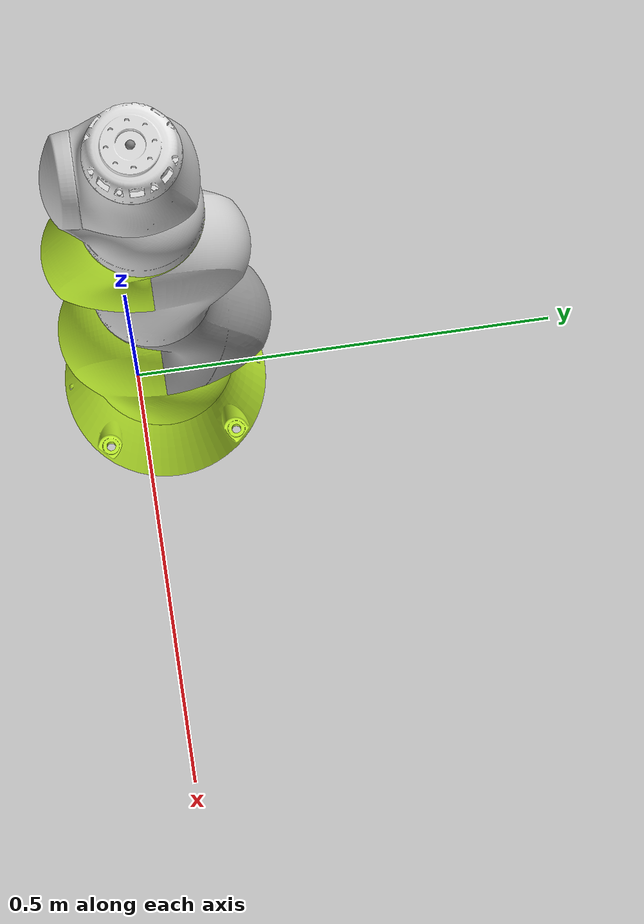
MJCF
<mujoco model="MuJoCo Model">
  <compiler angle="radian"/>

  <default>
    <geom type="mesh"/>
  </default>

  <asset>
    <mesh name="l0" file="/Users/mohammadhamid/Mujoco/onshape_to_mjcf_ws/onshape-to-mjcf/examples/iiwa14/iiwa14/assets/l0.stl"/>
    <mesh name="l1" file="/Users/mohammadhamid/Mujoco/onshape_to_mjcf_ws/onshape-to-mjcf/examples/iiwa14/iiwa14/assets/l1.stl"/>
    <mesh name="l2" file="/Users/mohammadhamid/Mujoco/onshape_to_mjcf_ws/onshape-to-mjcf/examples/iiwa14/iiwa14/assets/l2.stl"/>
    <mesh name="l3" file="/Users/mohammadhamid/Mujoco/onshape_to_mjcf_ws/onshape-to-mjcf/examples/iiwa14/iiwa14/assets/l3.stl"/>
    <mesh name="l4" file="/Users/mohammadhamid/Mujoco/onshape_to_mjcf_ws/onshape-to-mjcf/examples/iiwa14/iiwa14/assets/l4.stl"/>
    <mesh name="l5" file="/Users/mohammadhamid/Mujoco/onshape_to_mjcf_ws/onshape-to-mjcf/examples/iiwa14/iiwa14/assets/l5.stl"/>
    <mesh name="l6" file="/Users/mohammadhamid/Mujoco/onshape_to_mjcf_ws/onshape-to-mjcf/examples/iiwa14/iiwa14/assets/l6.stl"/>
    <mesh name="l7" file="/Users/mohammadhamid/Mujoco/onshape_to_mjcf_ws/onshape-to-mjcf/examples/iiwa14/iiwa14/assets/l7.stl"/>
  </asset>

  <worldbody>
    <body name="base">
      <geom pos="0.0024707 0.0319293 -0.0265261" quat="1 0 0 0" rgba="0.8 1 0.2 1" mesh="l0"/>
      <body name="l1" pos="0.0024707 0.0319293 0.120974" quat="0 1 0 0">
        <joint name="dof_j11" pos="0 0 0" axis="0 0 1" range="-2.96706 2.96706"/>
        <geom pos="0 0 0.1475" quat="0 1 0 0" rgba="0.8 1 0.2 1" mesh="l1"/>
        <body name="l2" pos="0 0.01 -0.2125" quat="0.707107 -0.707107 0 0">
          <joint name="dof_j21" pos="0 0 0" axis="0 0 1" range="-2.0944 2.0944"/>
          <geom pos="0.000436244 -0.36 -0.01" quat="0.707107 -0.707107 0 0" rgba="0.647059 0.647059 0.647059 1" mesh="l2"/>
          <body name="l3" pos="0 0.1945 -0.01" quat="0.707107 0.707107 0 0">
            <joint name="dof_j31" pos="0 0 0" axis="0 0 1" range="-2.96706 2.96706"/>
            <geom pos="0 0 0.5545" quat="0 1 0 0" rgba="0.8 0.8 0.8 1" mesh="l3"/>
            <body name="l4" pos="0 -0.0105 -0.2255" quat="0.707107 0.707107 0 0">
              <joint name="dof_j41" pos="0 0 0" axis="0 0 1" range="-2.0944 2.0944"/>
              <geom pos="0 0.78 -0.0105" quat="0.707107 0.707107 0 0" rgba="0.8 1 0.2 1" mesh="l4"/>
              <body name="l5" pos="0 -0.1745 -0.0105" quat="0.707107 -0.707107 0 0">
                <joint name="dof_j51" pos="0 0 0" axis="0 0 1" range="-2.96706 2.96706"/>
                <geom pos="0 0 0.9545" quat="0 1 0 0" rgba="0.8 0.8 0.8 1" mesh="l5"/>
                <body name="l6" pos="0 0.0707 -0.2255" quat="0.707107 -0.707107 0 0">
                  <joint name="dof_j61" pos="0 0 0" axis="0 0 1" range="-2.0944 2.0944"/>
                  <geom pos="0 -1.18 -0.0707" quat="0.707107 -0.707107 0 0" rgba="0.8 0.8 0.8 1" mesh="l6"/>
                  <body name="l7" pos="0 0.0711 -0.0707" quat="0 0 0.707107 -0.707107">
                    <joint name="dof_j71" pos="0 0 0" axis="0 0 1" range="-3.05433 3.05433"/>
                    <geom pos="0 0 1.2511" quat="0 1 0 0" rgba="0.917647 0.917647 0.917647 1" mesh="l7"/>
                    <site name="site_ee1" pos="0 0 -0.0549" quat="0 0 1 0"/>
                  </body>
                </body>
              </body>
            </body>
          </body>
        </body>
      </body>
    </body>
  </worldbody>
</mujoco>
